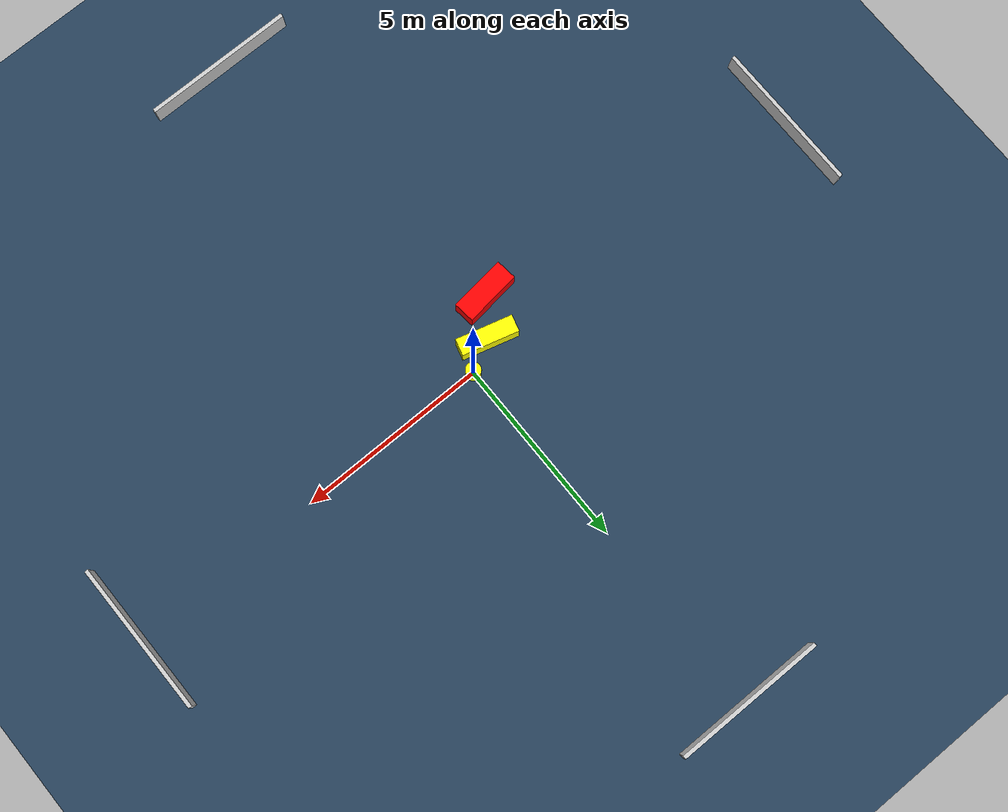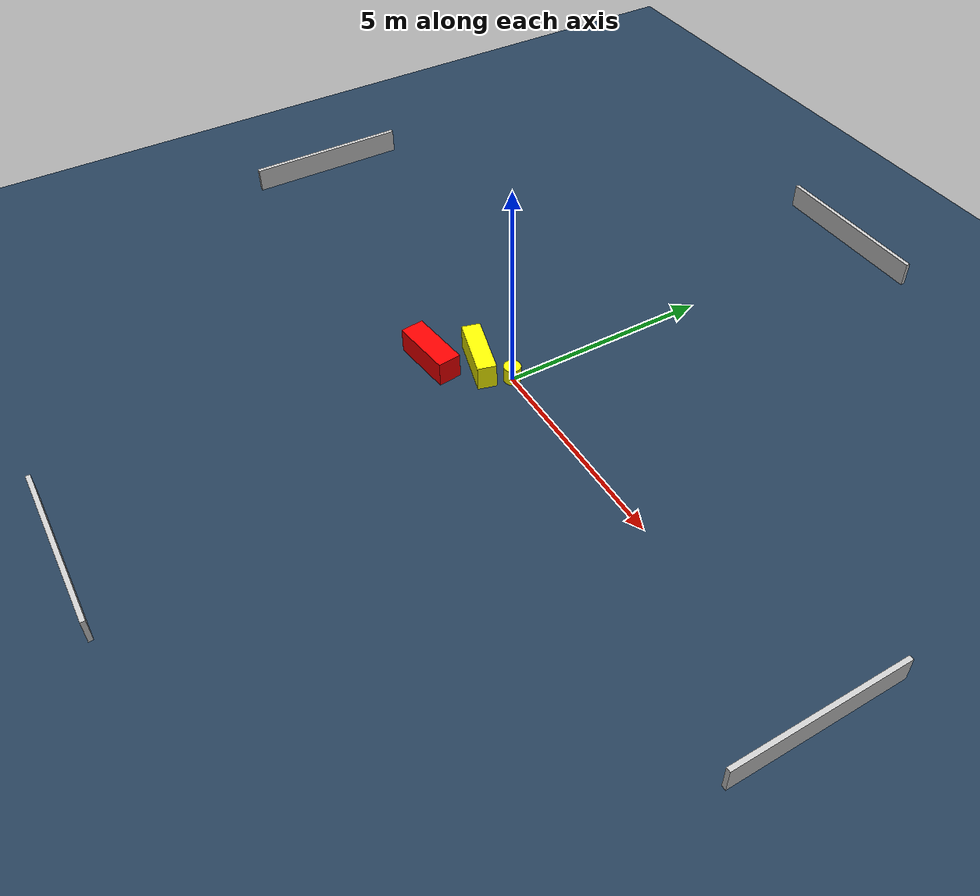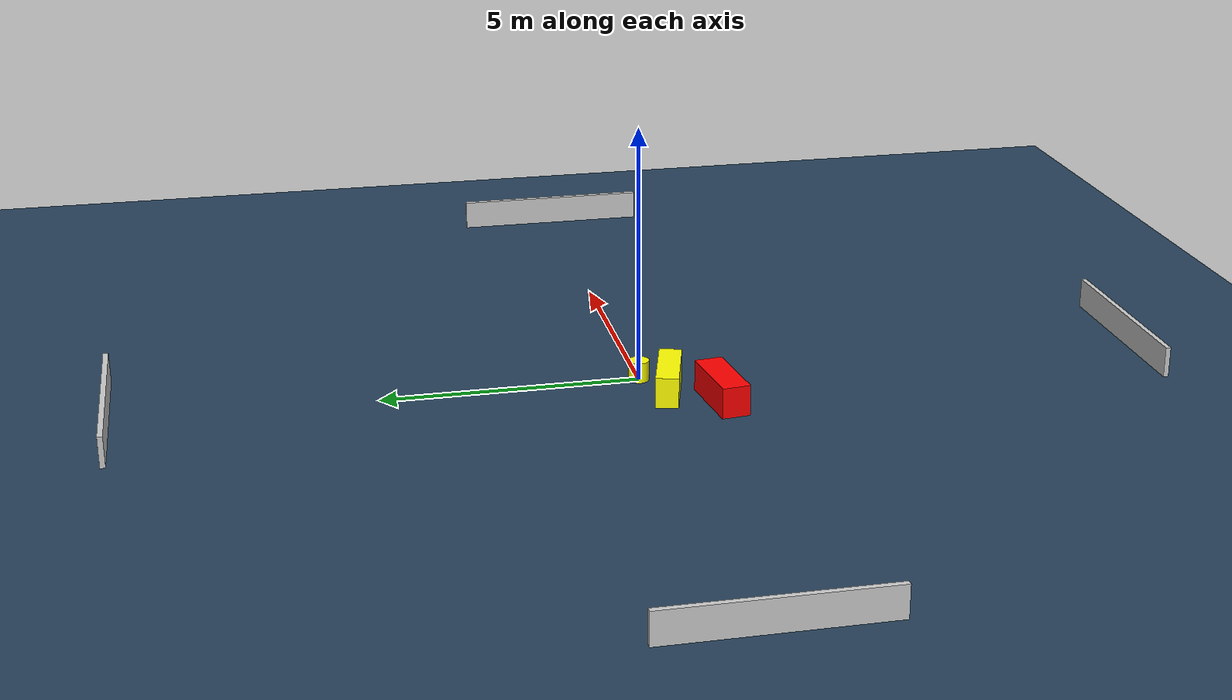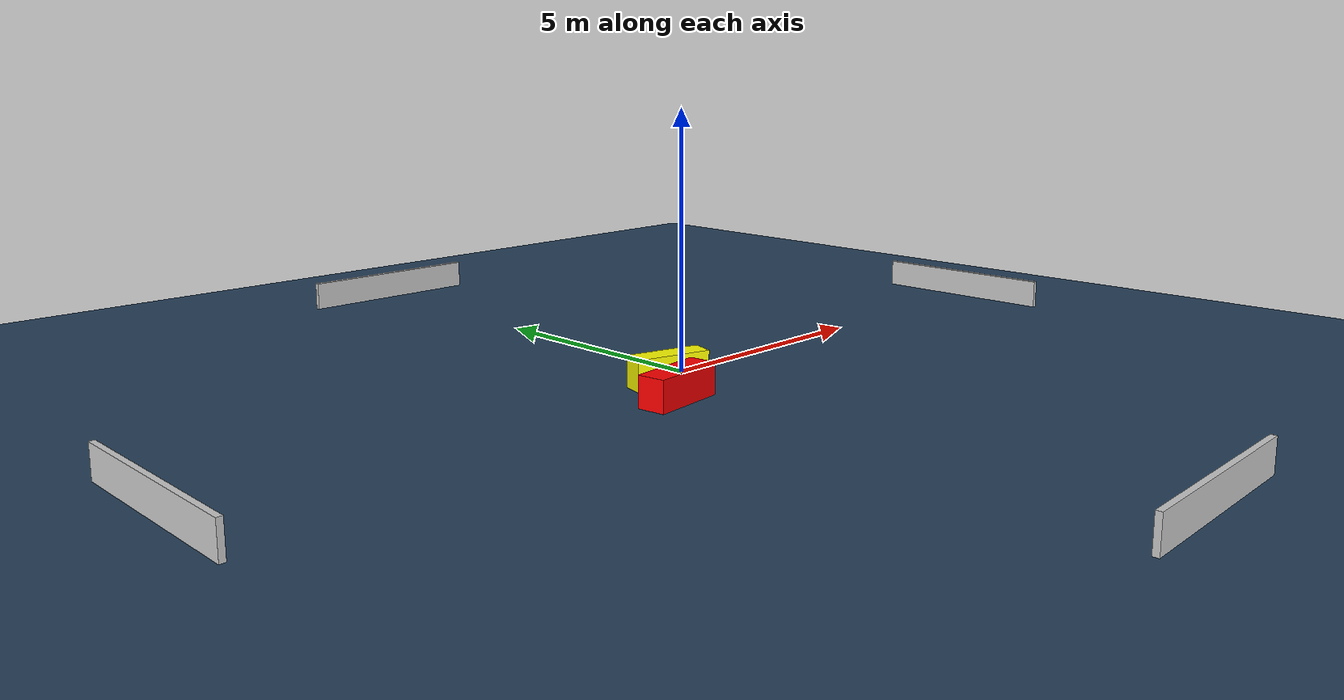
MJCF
<?xml version="1.0" ?>
<mujoco model="generated_environment">
  <option timestep="0.01" integrator="RK4" cone="elliptic"/>
  <default>
    <geom density="1"/>
  </default>
  <asset>
    <texture builtin="gradient" height="3072" name="skybox" rgb1="0.3 0.5 0.7" rgb2="0 0 0" type="skybox" width="512"/>
    <texture builtin="checker" height="300" name="groundplane" rgb1="0.2 0.3 0.4" rgb2="0.1 0.2 0.3" type="2d" width="300"/>
    <material name="groundplane" reflectance="0.2" texrepeat="5 5" texture="groundplane"/>
  </asset>
  <worldbody>
    <light dir="0 0 -1" directional="true" pos="0 0 1.5"/>
    <geom condim="3" friction="0.5 0.005 0.001" material="groundplane" name="floor" pos="0 0 0" size="0 0 0.05" type="plane"/>
    <body name="walls">
      <geom name="wall_1" condim="4" pos="-10.0 0.0 0.3" rgba="0.800000011920929 0.800000011920929 0.800000011920929 1.0" size="0.05 2.0 0.3" type="box"/>
      <geom name="wall_2" condim="4" pos="10.0 0.0 0.3" rgba="0.800000011920929 0.800000011920929 0.800000011920929 1.0" size="0.05 2.0 0.3" type="box"/>
      <geom name="wall_3" condim="4" pos="0.0 -10.0 0.3" rgba="0.800000011920929 0.800000011920929 0.800000011920929 1.0" size="2.0 0.05 0.3" type="box"/>
      <geom name="wall_4" condim="4" pos="0.0 10.0 0.3" rgba="0.800000011920929 0.800000011920929 0.800000011920929 1.0" size="2.0 0.05 0.3" type="box"/>
    </body>
    <body name="robot">
      <joint name="joint_x" type="slide" pos="0 0 0" axis="1 0 0"/>
      <joint name="joint_y" type="slide" pos="0 0 0" axis="0 1 0"/>
      <geom name="robot" type="cylinder" pos="0.0 0.0 0.2" size="0.2 0.2 0.0" mass="5.0" friction="1.0 0.005 0.0001" condim="4" rgba="1.0 1.0 0.0 1.0"/>
    </body>
    <body name="obstacle_1_movable">
      <geom name="obstacle_1_movable" condim="4" pos="-0.7716863486195796 -0.41449423773243277 0.3" euler="0 0 254.68315426471764" friction="0.0 0.005 0.001" rgba="1.0 1.0 0.0 1.0" size="0.21992869761019074 0.7442669448354331 0.3" type="box" mass="0.1"/>
      <joint type="free"/>
    </body>
    <body name="obstacle_2_static">
      <geom name="obstacle_2_static" condim="4" pos="-1.423518928967307 -1.2900133860050533 0.3" euler="0 0 276.8109126637913" friction="0.0 0.005 0.001" rgba="1.0 0.0 0.0 1.0" size="0.2758689325406557 0.7431675714512771 0.3" type="box"/>
    </body>
  </worldbody>
  <actuator>
    <motor name="actuator_x" joint="joint_x" gear="1" ctrlrange="-1 1"/>
    <motor name="actuator_y" joint="joint_y" gear="1" ctrlrange="-1 1"/>
  </actuator>
</mujoco>
